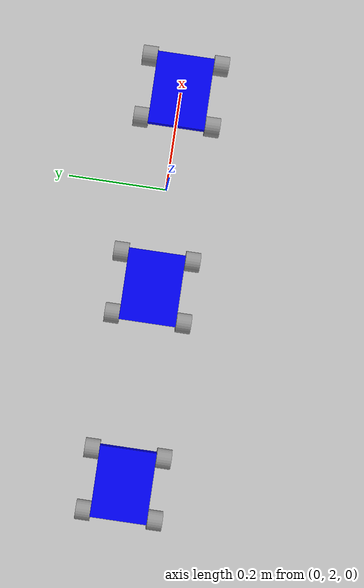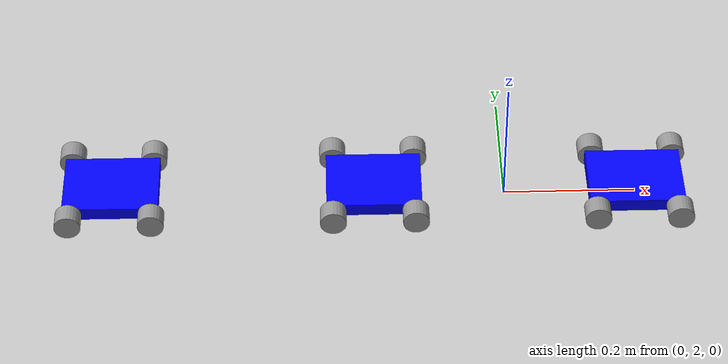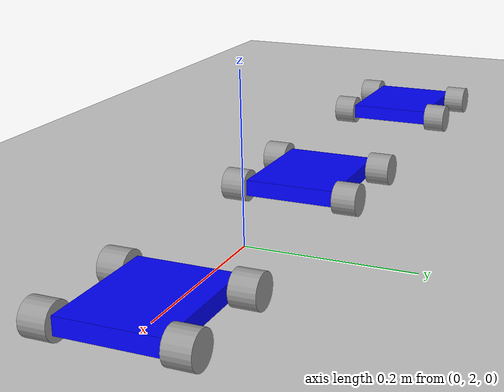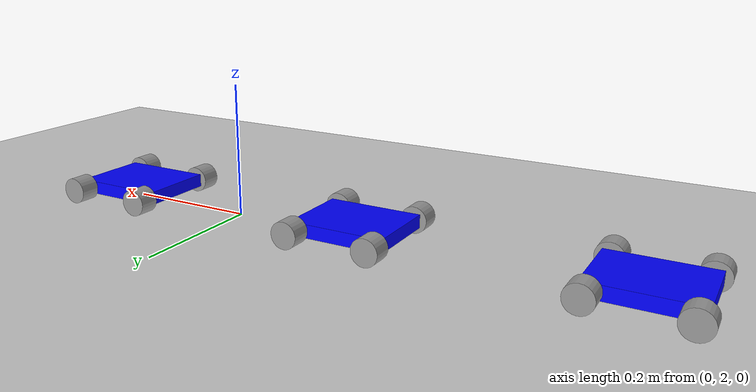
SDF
<sdf version="1.6">
 <world name="default">
  <model name="ground_plane">
   <static>1</static>
   <link name="link">
    <collision name="collision">
     <geometry><plane><normal>0 0 1</normal><size>100 100</size></plane></geometry>
     <surface><friction><ode><mu>100</mu><mu2>50</mu2></ode></friction></surface>
    </collision>
    <visual name="visual">
     <cast_shadows>0</cast_shadows>
     <geometry><plane><normal>0 0 1</normal><size>100 100</size></plane></geometry>
     <material>
      <script><uri>file://media/materials/scripts/gazebo.material</uri><name>Gazebo/Grey</name></script>
     </material>
    </visual>
   </link>
  </model>
  <model name="nanocrawler1">
   <link name="chassis">
    <inertial>
     <mass>1</mass>
     <inertia>
      <ixx>0.166667</ixx>
      <ixy>0</ixy>
      <ixz>0</ixz>
      <iyy>0.166667</iyy>
      <iyz>0</iyz>
      <izz>0.166667</izz>
     </inertia>
    </inertial>
    <visual name="visual">
     <geometry><box><size>0.145 0.115 0.02</size></box></geometry>
     <material>
      <lighting>1</lighting>
      <script><uri>file://media/materials/scripts/gazebo.material</uri><name>Gazebo/Grey</name></script>
      <shader type="pixel"><normal_map>__default__</normal_map></shader>
      <ambient>0 0 1 1</ambient>
      <diffuse>0.7 0.7 0.7 1</diffuse>
      <specular>0.01 0.01 0.01 1</specular>
      <emissive>0 0 0 1</emissive>
     </material>
    </visual>
    <collision name="collision">
     <geometry><box><size>0.145 0.115 0.02</size></box></geometry>
     <surface>
      <friction>
       <ode><mu>1</mu><mu2>1</mu2><fdir1>0 0 0</fdir1><slip1>0</slip1><slip2>0</slip2></ode>
       <torsional>
        <coefficient>1</coefficient>
        <patch_radius>0</patch_radius>
        <surface_radius>0</surface_radius>
        <use_patch_radius>1</use_patch_radius>
        <ode><slip>0</slip></ode>
       </torsional>
      </friction>
      <bounce><restitution_coefficient>0</restitution_coefficient><threshold>1e+06</threshold></bounce>
      <contact>
       <collide_without_contact>0</collide_without_contact>
       <collide_without_contact_bitmask>1</collide_without_contact_bitmask>
       <collide_bitmask>1</collide_bitmask>
       <ode>
        <soft_cfm>0</soft_cfm>
        <soft_erp>0.2</soft_erp>
        <kp>1e+13</kp>
        <kd>1</kd>
        <max_vel>0.01</max_vel>
        <min_depth>0</min_depth>
       </ode>
       <bullet>
        <split_impulse>1</split_impulse>
        <split_impulse_penetration_threshold>-0.01</split_impulse_penetration_threshold>
        <soft_cfm>0</soft_cfm>
        <soft_erp>0.2</soft_erp>
        <kp>1e+13</kp>
        <kd>1</kd>
       </bullet>
      </contact>
     </surface>
    </collision>
   </link>
   <link name="left_front_wheel">
    <pose>0.0625 0.0725 0 1.5708 -0 0</pose>
    <inertial>
     <mass>1</mass>
     <inertia><ixx>0.145833</ixx><ixy>0</ixy><ixz>0</ixz><iyy>0.145833</iyy><iyz>0</iyz><izz>0.125</izz></inertia>
    </inertial>
    <visual name="visual">
     <geometry><cylinder><radius>0.02</radius><length>0.03</length></cylinder></geometry>
     <material>
      <lighting>1</lighting>
      <script><uri>file://media/materials/scripts/gazebo.material</uri><name>Gazebo/Grey</name></script>
      <shader type="pixel"><normal_map>__default__</normal_map></shader>
      <ambient>0.1 0.1 0.1 1</ambient>
      <diffuse>0.7 0.7 0.7 1</diffuse>
      <specular>0.01 0.01 0.01 1</specular>
      <emissive>0 0 0 1</emissive>
     </material>
    </visual>
    <collision name="collision">
     <geometry><cylinder><radius>0.02</radius><length>0.03</length></cylinder></geometry>
     <surface>
      <friction>
       <ode><mu>1</mu><mu2>1</mu2><fdir1>0 0 0</fdir1><slip1>0</slip1><slip2>0</slip2></ode>
       <torsional>
        <coefficient>1</coefficient>
        <patch_radius>0</patch_radius>
        <surface_radius>0</surface_radius>
        <use_patch_radius>1</use_patch_radius>
        <ode><slip>0</slip></ode>
       </torsional>
      </friction>
      <bounce><restitution_coefficient>0</restitution_coefficient><threshold>1e+06</threshold></bounce>
      <contact>
       <collide_without_contact>0</collide_without_contact>
       <collide_without_contact_bitmask>1</collide_without_contact_bitmask>
       <collide_bitmask>1</collide_bitmask>
       <ode>
        <soft_cfm>0</soft_cfm>
        <soft_erp>0.2</soft_erp>
        <kp>1e+13</kp>
        <kd>1</kd>
        <max_vel>0.01</max_vel>
        <min_depth>0</min_depth>
       </ode>
       <bullet>
        <split_impulse>1</split_impulse>
        <split_impulse_penetration_threshold>-0.01</split_impulse_penetration_threshold>
        <soft_cfm>0</soft_cfm>
        <soft_erp>0.2</soft_erp>
        <kp>1e+13</kp>
        <kd>1</kd>
       </bullet>
      </contact>
     </surface>
    </collision>
   </link>
   <joint name="left_front_wheel_hinge" type="revolute">
    <child>left_front_wheel</child>
    <parent>chassis</parent>
    <axis>
     <xyz>0 0 1</xyz>
     <use_parent_model_frame>0</use_parent_model_frame>
     <limit><lower>-1e+16</lower><upper>1e+16</upper></limit>
     <dynamics><spring_reference>0</spring_reference><spring_stiffness>0</spring_stiffness></dynamics>
    </axis>
   </joint>
   <link name="right_front_wheel">
    <pose>0.0625 -0.0725 0 1.5708 -0 0</pose>
    <inertial>
     <mass>1</mass>
     <inertia><ixx>0.145833</ixx><ixy>0</ixy><ixz>0</ixz><iyy>0.145833</iyy><iyz>0</iyz><izz>0.125</izz></inertia>
    </inertial>
    <visual name="visual">
     <geometry><cylinder><radius>0.02</radius><length>0.03</length></cylinder></geometry>
     <material>
      <lighting>1</lighting>
      <script><uri>file://media/materials/scripts/gazebo.material</uri><name>Gazebo/Grey</name></script>
      <shader type="pixel"><normal_map>__default__</normal_map></shader>
      <ambient>0.1 0.1 0.1 1</ambient>
      <diffuse>0.7 0.7 0.7 1</diffuse>
      <specular>0.01 0.01 0.01 1</specular>
      <emissive>0 0 0 1</emissive>
     </material>
    </visual>
    <collision name="collision">
     <geometry><cylinder><radius>0.02</radius><length>0.03</length></cylinder></geometry>
     <surface>
      <friction>
       <ode><mu>1</mu><mu2>1</mu2><fdir1>0 0 0</fdir1><slip1>0</slip1><slip2>0</slip2></ode>
       <torsional>
        <coefficient>1</coefficient>
        <patch_radius>0</patch_radius>
        <surface_radius>0</surface_radius>
        <use_patch_radius>1</use_patch_radius>
        <ode><slip>0</slip></ode>
       </torsional>
      </friction>
      <bounce><restitution_coefficient>0</restitution_coefficient><threshold>1e+06</threshold></bounce>
      <contact>
       <collide_without_contact>0</collide_without_contact>
       <collide_without_contact_bitmask>1</collide_without_contact_bitmask>
       <collide_bitmask>1</collide_bitmask>
       <ode>
        <soft_cfm>0</soft_cfm>
        <soft_erp>0.2</soft_erp>
        <kp>1e+13</kp>
        <kd>1</kd>
        <max_vel>0.01</max_vel>
        <min_depth>0</min_depth>
       </ode>
       <bullet>
        <split_impulse>1</split_impulse>
        <split_impulse_penetration_threshold>-0.01</split_impulse_penetration_threshold>
        <soft_cfm>0</soft_cfm>
        <soft_erp>0.2</soft_erp>
        <kp>1e+13</kp>
        <kd>1</kd>
       </bullet>
      </contact>
     </surface>
    </collision>
   </link>
   <joint name="right_front_wheel_hinge" type="revolute">
    <child>right_front_wheel</child>
    <parent>chassis</parent>
    <axis>
     <xyz>0 0 1</xyz>
     <use_parent_model_frame>0</use_parent_model_frame>
     <limit><lower>-1e+16</lower><upper>1e+16</upper></limit>
     <dynamics><spring_reference>0</spring_reference><spring_stiffness>0</spring_stiffness></dynamics>
    </axis>
   </joint>
   <link name="left_rear_wheel">
    <pose>-0.0625 0.0725 0 1.5708 -0 0</pose>
    <inertial>
     <mass>1</mass>
     <inertia><ixx>0.145833</ixx><ixy>0</ixy><ixz>0</ixz><iyy>0.145833</iyy><iyz>0</iyz><izz>0.125</izz></inertia>
    </inertial>
    <visual name="visual">
     <geometry><cylinder><radius>0.02</radius><length>0.03</length></cylinder></geometry>
     <material>
      <lighting>1</lighting>
      <script><uri>file://media/materials/scripts/gazebo.material</uri><name>Gazebo/Grey</name></script>
      <shader type="pixel"><normal_map>__default__</normal_map></shader>
      <ambient>0.1 0.1 0.1 1</ambient>
      <diffuse>0.7 0.7 0.7 1</diffuse>
      <specular>0.01 0.01 0.01 1</specular>
      <emissive>0 0 0 1</emissive>
     </material>
    </visual>
    <collision name="collision">
     <geometry><cylinder><radius>0.02</radius><length>0.03</length></cylinder></geometry>
     <surface>
      <friction>
       <ode><mu>1</mu><mu2>1</mu2><fdir1>0 0 0</fdir1><slip1>0</slip1><slip2>0</slip2></ode>
       <torsional>
        <coefficient>1</coefficient>
        <patch_radius>0</patch_radius>
        <surface_radius>0</surface_radius>
        <use_patch_radius>1</use_patch_radius>
        <ode><slip>0</slip></ode>
       </torsional>
      </friction>
      <bounce><restitution_coefficient>0</restitution_coefficient><threshold>1e+06</threshold></bounce>
      <contact>
       <collide_without_contact>0</collide_without_contact>
       <collide_without_contact_bitmask>1</collide_without_contact_bitmask>
       <collide_bitmask>1</collide_bitmask>
       <ode>
        <soft_cfm>0</soft_cfm>
        <soft_erp>0.2</soft_erp>
        <kp>1e+13</kp>
        <kd>1</kd>
        <max_vel>0.01</max_vel>
        <min_depth>0</min_depth>
       </ode>
       <bullet>
        <split_impulse>1</split_impulse>
        <split_impulse_penetration_threshold>-0.01</split_impulse_penetration_threshold>
        <soft_cfm>0</soft_cfm>
        <soft_erp>0.2</soft_erp>
        <kp>1e+13</kp>
        <kd>1</kd>
       </bullet>
      </contact>
     </surface>
    </collision>
   </link>
   <joint name="left_rear_wheel_hinge" type="revolute">
    <child>left_rear_wheel</child>
    <parent>chassis</parent>
    <axis>
     <xyz>0 0 1</xyz>
     <use_parent_model_frame>0</use_parent_model_frame>
     <limit><lower>-1e+16</lower><upper>1e+16</upper></limit>
     <dynamics><spring_reference>0</spring_reference><spring_stiffness>0</spring_stiffness></dynamics>
    </axis>
   </joint>
   <link name="right_rear_wheel">
    <pose>-0.0625 -0.0725 0 1.5708 -0 0</pose>
    <inertial>
     <mass>1</mass>
     <inertia><ixx>0.145833</ixx><ixy>0</ixy><ixz>0</ixz><iyy>0.145833</iyy><iyz>0</iyz><izz>0.125</izz></inertia>
    </inertial>
    <visual name="visual">
     <geometry><cylinder><radius>0.02</radius><length>0.03</length></cylinder></geometry>
     <material>
      <lighting>1</lighting>
      <script><uri>file://media/materials/scripts/gazebo.material</uri><name>Gazebo/Grey</name></script>
      <shader type="pixel"><normal_map>__default__</normal_map></shader>
      <ambient>0.1 0.1 0.1 1</ambient>
      <diffuse>0.7 0.7 0.7 1</diffuse>
      <specular>0.01 0.01 0.01 1</specular>
      <emissive>0 0 0 1</emissive>
     </material>
    </visual>
    <collision name="collision">
     <geometry><cylinder><radius>0.02</radius><length>0.03</length></cylinder></geometry>
     <surface>
      <friction>
       <ode><mu>1</mu><mu2>1</mu2><fdir1>0 0 0</fdir1><slip1>0</slip1><slip2>0</slip2></ode>
       <torsional>
        <coefficient>1</coefficient>
        <patch_radius>0</patch_radius>
        <surface_radius>0</surface_radius>
        <use_patch_radius>1</use_patch_radius>
        <ode><slip>0</slip></ode>
       </torsional>
      </friction>
      <bounce><restitution_coefficient>0</restitution_coefficient><threshold>1e+06</threshold></bounce>
      <contact>
       <collide_without_contact>0</collide_without_contact>
       <collide_without_contact_bitmask>1</collide_without_contact_bitmask>
       <collide_bitmask>1</collide_bitmask>
       <ode>
        <soft_cfm>0</soft_cfm>
        <soft_erp>0.2</soft_erp>
        <kp>1e+13</kp>
        <kd>1</kd>
        <max_vel>0.01</max_vel>
        <min_depth>0</min_depth>
       </ode>
       <bullet>
        <split_impulse>1</split_impulse>
        <split_impulse_penetration_threshold>-0.01</split_impulse_penetration_threshold>
        <soft_cfm>0</soft_cfm>
        <soft_erp>0.2</soft_erp>
        <kp>1e+13</kp>
        <kd>1</kd>
       </bullet>
      </contact>
     </surface>
    </collision>
   </link>
   <joint name="right_rear_wheel_hinge" type="revolute">
    <child>right_rear_wheel</child>
    <parent>chassis</parent>
    <axis>
     <xyz>0 0 1</xyz>
     <use_parent_model_frame>0</use_parent_model_frame>
     <limit><lower>-1e+16</lower><upper>1e+16</upper></limit>
     <dynamics><spring_reference>0</spring_reference><spring_stiffness>0</spring_stiffness></dynamics>
    </axis>
   </joint>
   <static>0</static>
   <pose>-0.600256 2.0001 0.02 -1e-06 2e-06 -0.000482</pose>
  </model>
  <model name="nanocrawler2">
   <link name="chassis">
    <inertial>
     <mass>1</mass>
     <inertia>
      <ixx>0.166667</ixx>
      <ixy>0</ixy>
      <ixz>0</ixz>
      <iyy>0.166667</iyy>
      <iyz>0</iyz>
      <izz>0.166667</izz>
     </inertia>
    </inertial>
    <visual name="visual">
     <geometry><box><size>0.145 0.115 0.02</size></box></geometry>
     <material>
      <lighting>1</lighting>
      <script><uri>file://media/materials/scripts/gazebo.material</uri><name>Gazebo/Grey</name></script>
      <shader type="pixel"><normal_map>__default__</normal_map></shader>
      <ambient>0 0 1 1</ambient>
      <diffuse>0.7 0.7 0.7 1</diffuse>
      <specular>0.01 0.01 0.01 1</specular>
      <emissive>0 0 0 1</emissive>
     </material>
    </visual>
    <collision name="collision">
     <geometry><box><size>0.145 0.115 0.02</size></box></geometry>
     <surface>
      <friction>
       <ode><mu>1</mu><mu2>1</mu2><fdir1>0 0 0</fdir1><slip1>0</slip1><slip2>0</slip2></ode>
       <torsional>
        <coefficient>1</coefficient>
        <patch_radius>0</patch_radius>
        <surface_radius>0</surface_radius>
        <use_patch_radius>1</use_patch_radius>
        <ode><slip>0</slip></ode>
       </torsional>
      </friction>
      <bounce><restitution_coefficient>0</restitution_coefficient><threshold>1e+06</threshold></bounce>
      <contact>
       <collide_without_contact>0</collide_without_contact>
       <collide_without_contact_bitmask>1</collide_without_contact_bitmask>
       <collide_bitmask>1</collide_bitmask>
       <ode>
        <soft_cfm>0</soft_cfm>
        <soft_erp>0.2</soft_erp>
        <kp>1e+13</kp>
        <kd>1</kd>
        <max_vel>0.01</max_vel>
        <min_depth>0</min_depth>
       </ode>
       <bullet>
        <split_impulse>1</split_impulse>
        <split_impulse_penetration_threshold>-0.01</split_impulse_penetration_threshold>
        <soft_cfm>0</soft_cfm>
        <soft_erp>0.2</soft_erp>
        <kp>1e+13</kp>
        <kd>1</kd>
       </bullet>
      </contact>
     </surface>
    </collision>
   </link>
   <link name="left_front_wheel">
    <pose>0.0625 0.0725 0 1.5708 -0 0</pose>
    <inertial>
     <mass>1</mass>
     <inertia><ixx>0.145833</ixx><ixy>0</ixy><ixz>0</ixz><iyy>0.145833</iyy><iyz>0</iyz><izz>0.125</izz></inertia>
    </inertial>
    <visual name="visual">
     <geometry><cylinder><radius>0.02</radius><length>0.03</length></cylinder></geometry>
     <material>
      <lighting>1</lighting>
      <script><uri>file://media/materials/scripts/gazebo.material</uri><name>Gazebo/Grey</name></script>
      <shader type="pixel"><normal_map>__default__</normal_map></shader>
      <ambient>0.1 0.1 0.1 1</ambient>
      <diffuse>0.7 0.7 0.7 1</diffuse>
      <specular>0.01 0.01 0.01 1</specular>
      <emissive>0 0 0 1</emissive>
     </material>
    </visual>
    <collision name="collision">
     <geometry><cylinder><radius>0.02</radius><length>0.03</length></cylinder></geometry>
     <surface>
      <friction>
       <ode><mu>1</mu><mu2>1</mu2><fdir1>0 0 0</fdir1><slip1>0</slip1><slip2>0</slip2></ode>
       <torsional>
        <coefficient>1</coefficient>
        <patch_radius>0</patch_radius>
        <surface_radius>0</surface_radius>
        <use_patch_radius>1</use_patch_radius>
        <ode><slip>0</slip></ode>
       </torsional>
      </friction>
      <bounce><restitution_coefficient>0</restitution_coefficient><threshold>1e+06</threshold></bounce>
      <contact>
       <collide_without_contact>0</collide_without_contact>
       <collide_without_contact_bitmask>1</collide_without_contact_bitmask>
       <collide_bitmask>1</collide_bitmask>
       <ode>
        <soft_cfm>0</soft_cfm>
        <soft_erp>0.2</soft_erp>
        <kp>1e+13</kp>
        <kd>1</kd>
        <max_vel>0.01</max_vel>
        <min_depth>0</min_depth>
       </ode>
       <bullet>
        <split_impulse>1</split_impulse>
        <split_impulse_penetration_threshold>-0.01</split_impulse_penetration_threshold>
        <soft_cfm>0</soft_cfm>
        <soft_erp>0.2</soft_erp>
        <kp>1e+13</kp>
        <kd>1</kd>
       </bullet>
      </contact>
     </surface>
    </collision>
   </link>
   <joint name="left_front_wheel_hinge" type="revolute">
    <child>left_front_wheel</child>
    <parent>chassis</parent>
    <axis>
     <xyz>0 0 1</xyz>
     <use_parent_model_frame>0</use_parent_model_frame>
     <limit><lower>-1e+16</lower><upper>1e+16</upper></limit>
     <dynamics><spring_reference>0</spring_reference><spring_stiffness>0</spring_stiffness></dynamics>
    </axis>
   </joint>
   <link name="right_front_wheel">
    <pose>0.0625 -0.0725 0 1.5708 -0 0</pose>
    <inertial>
     <mass>1</mass>
     <inertia><ixx>0.145833</ixx><ixy>0</ixy><ixz>0</ixz><iyy>0.145833</iyy><iyz>0</iyz><izz>0.125</izz></inertia>
    </inertial>
    <visual name="visual">
     <geometry><cylinder><radius>0.02</radius><length>0.03</length></cylinder></geometry>
     <material>
      <lighting>1</lighting>
      <script><uri>file://media/materials/scripts/gazebo.material</uri><name>Gazebo/Grey</name></script>
      <shader type="pixel"><normal_map>__default__</normal_map></shader>
      <ambient>0.1 0.1 0.1 1</ambient>
      <diffuse>0.7 0.7 0.7 1</diffuse>
      <specular>0.01 0.01 0.01 1</specular>
      <emissive>0 0 0 1</emissive>
     </material>
    </visual>
    <collision name="collision">
     <geometry><cylinder><radius>0.02</radius><length>0.03</length></cylinder></geometry>
     <surface>
      <friction>
       <ode><mu>1</mu><mu2>1</mu2><fdir1>0 0 0</fdir1><slip1>0</slip1><slip2>0</slip2></ode>
       <torsional>
        <coefficient>1</coefficient>
        <patch_radius>0</patch_radius>
        <surface_radius>0</surface_radius>
        <use_patch_radius>1</use_patch_radius>
        <ode><slip>0</slip></ode>
       </torsional>
      </friction>
      <bounce><restitution_coefficient>0</restitution_coefficient><threshold>1e+06</threshold></bounce>
      <contact>
       <collide_without_contact>0</collide_without_contact>
       <collide_without_contact_bitmask>1</collide_without_contact_bitmask>
       <collide_bitmask>1</collide_bitmask>
       <ode>
        <soft_cfm>0</soft_cfm>
        <soft_erp>0.2</soft_erp>
        <kp>1e+13</kp>
        <kd>1</kd>
        <max_vel>0.01</max_vel>
        <min_depth>0</min_depth>
       </ode>
       <bullet>
        <split_impulse>1</split_impulse>
        <split_impulse_penetration_threshold>-0.01</split_impulse_penetration_threshold>
        <soft_cfm>0</soft_cfm>
        <soft_erp>0.2</soft_erp>
        <kp>1e+13</kp>
        <kd>1</kd>
       </bullet>
      </contact>
     </surface>
    </collision>
   </link>
   <joint name="right_front_wheel_hinge" type="revolute">
    <child>right_front_wheel</child>
    <parent>chassis</parent>
    <axis>
     <xyz>0 0 1</xyz>
     <use_parent_model_frame>0</use_parent_model_frame>
     <limit><lower>-1e+16</lower><upper>1e+16</upper></limit>
     <dynamics><spring_reference>0</spring_reference><spring_stiffness>0</spring_stiffness></dynamics>
    </axis>
   </joint>
   <link name="left_rear_wheel">
    <pose>-0.0625 0.0725 0 1.5708 -0 0</pose>
    <inertial>
     <mass>1</mass>
     <inertia><ixx>0.145833</ixx><ixy>0</ixy><ixz>0</ixz><iyy>0.145833</iyy><iyz>0</iyz><izz>0.125</izz></inertia>
    </inertial>
    <visual name="visual">
     <geometry><cylinder><radius>0.02</radius><length>0.03</length></cylinder></geometry>
     <material>
      <lighting>1</lighting>
      <script><uri>file://media/materials/scripts/gazebo.material</uri><name>Gazebo/Grey</name></script>
      <shader type="pixel"><normal_map>__default__</normal_map></shader>
      <ambient>0.1 0.1 0.1 1</ambient>
      <diffuse>0.7 0.7 0.7 1</diffuse>
      <specular>0.01 0.01 0.01 1</specular>
      <emissive>0 0 0 1</emissive>
     </material>
    </visual>
    <collision name="collision">
     <geometry><cylinder><radius>0.02</radius><length>0.03</length></cylinder></geometry>
     <surface>
      <friction>
       <ode><mu>1</mu><mu2>1</mu2><fdir1>0 0 0</fdir1><slip1>0</slip1><slip2>0</slip2></ode>
       <torsional>
        <coefficient>1</coefficient>
        <patch_radius>0</patch_radius>
        <surface_radius>0</surface_radius>
        <use_patch_radius>1</use_patch_radius>
        <ode><slip>0</slip></ode>
       </torsional>
      </friction>
      <bounce><restitution_coefficient>0</restitution_coefficient><threshold>1e+06</threshold></bounce>
      <contact>
       <collide_without_contact>0</collide_without_contact>
       <collide_without_contact_bitmask>1</collide_without_contact_bitmask>
       <collide_bitmask>1</collide_bitmask>
       <ode>
        <soft_cfm>0</soft_cfm>
        <soft_erp>0.2</soft_erp>
        <kp>1e+13</kp>
        <kd>1</kd>
        <max_vel>0.01</max_vel>
        <min_depth>0</min_depth>
       </ode>
       <bullet>
        <split_impulse>1</split_impulse>
        <split_impulse_penetration_threshold>-0.01</split_impulse_penetration_threshold>
        <soft_cfm>0</soft_cfm>
        <soft_erp>0.2</soft_erp>
        <kp>1e+13</kp>
        <kd>1</kd>
       </bullet>
      </contact>
     </surface>
    </collision>
   </link>
   <joint name="left_rear_wheel_hinge" type="revolute">
    <child>left_rear_wheel</child>
    <parent>chassis</parent>
    <axis>
     <xyz>0 0 1</xyz>
     <use_parent_model_frame>0</use_parent_model_frame>
     <limit><lower>-1e+16</lower><upper>1e+16</upper></limit>
     <dynamics><spring_reference>0</spring_reference><spring_stiffness>0</spring_stiffness></dynamics>
    </axis>
   </joint>
   <link name="right_rear_wheel">
    <pose>-0.0625 -0.0725 0 1.5708 -0 0</pose>
    <inertial>
     <mass>1</mass>
     <inertia><ixx>0.145833</ixx><ixy>0</ixy><ixz>0</ixz><iyy>0.145833</iyy><iyz>0</iyz><izz>0.125</izz></inertia>
    </inertial>
    <visual name="visual">
     <geometry><cylinder><radius>0.02</radius><length>0.03</length></cylinder></geometry>
     <material>
      <lighting>1</lighting>
      <script><uri>file://media/materials/scripts/gazebo.material</uri><name>Gazebo/Grey</name></script>
      <shader type="pixel"><normal_map>__default__</normal_map></shader>
      <ambient>0.1 0.1 0.1 1</ambient>
      <diffuse>0.7 0.7 0.7 1</diffuse>
      <specular>0.01 0.01 0.01 1</specular>
      <emissive>0 0 0 1</emissive>
     </material>
    </visual>
    <collision name="collision">
     <geometry><cylinder><radius>0.02</radius><length>0.03</length></cylinder></geometry>
     <surface>
      <friction>
       <ode><mu>1</mu><mu2>1</mu2><fdir1>0 0 0</fdir1><slip1>0</slip1><slip2>0</slip2></ode>
       <torsional>
        <coefficient>1</coefficient>
        <patch_radius>0</patch_radius>
        <surface_radius>0</surface_radius>
        <use_patch_radius>1</use_patch_radius>
        <ode><slip>0</slip></ode>
       </torsional>
      </friction>
      <bounce><restitution_coefficient>0</restitution_coefficient><threshold>1e+06</threshold></bounce>
      <contact>
       <collide_without_contact>0</collide_without_contact>
       <collide_without_contact_bitmask>1</collide_without_contact_bitmask>
       <collide_bitmask>1</collide_bitmask>
       <ode>
        <soft_cfm>0</soft_cfm>
        <soft_erp>0.2</soft_erp>
        <kp>1e+13</kp>
        <kd>1</kd>
        <max_vel>0.01</max_vel>
        <min_depth>0</min_depth>
       </ode>
       <bullet>
        <split_impulse>1</split_impulse>
        <split_impulse_penetration_threshold>-0.01</split_impulse_penetration_threshold>
        <soft_cfm>0</soft_cfm>
        <soft_erp>0.2</soft_erp>
        <kp>1e+13</kp>
        <kd>1</kd>
       </bullet>
      </contact>
     </surface>
    </collision>
   </link>
   <joint name="right_rear_wheel_hinge" type="revolute">
    <child>right_rear_wheel</child>
    <parent>chassis</parent>
    <axis>
     <xyz>0 0 1</xyz>
     <use_parent_model_frame>0</use_parent_model_frame>
     <limit><lower>-1e+16</lower><upper>1e+16</upper></limit>
     <dynamics><spring_reference>0</spring_reference><spring_stiffness>0</spring_stiffness></dynamics>
    </axis>
   </joint>
   <static>0</static>
   <pose>-0.200256 2.0001 0.02 -1e-06 2e-06 -0.000482</pose>
  </model>
  <model name="nanocrawler3">
   <link name="chassis">
    <inertial>
     <mass>1</mass>
     <inertia>
      <ixx>0.166667</ixx>
      <ixy>0</ixy>
      <ixz>0</ixz>
      <iyy>0.166667</iyy>
      <iyz>0</iyz>
      <izz>0.166667</izz>
     </inertia>
    </inertial>
    <visual name="visual">
     <geometry><box><size>0.145 0.115 0.02</size></box></geometry>
     <material>
      <lighting>1</lighting>
      <script><uri>file://media/materials/scripts/gazebo.material</uri><name>Gazebo/Grey</name></script>
      <shader type="pixel"><normal_map>__default__</normal_map></shader>
      <ambient>0 0 1 1</ambient>
      <diffuse>0.7 0.7 0.7 1</diffuse>
      <specular>0.01 0.01 0.01 1</specular>
      <emissive>0 0 0 1</emissive>
     </material>
    </visual>
    <collision name="collision">
     <geometry><box><size>0.145 0.115 0.02</size></box></geometry>
     <surface>
      <friction>
       <ode><mu>1</mu><mu2>1</mu2><fdir1>0 0 0</fdir1><slip1>0</slip1><slip2>0</slip2></ode>
       <torsional>
        <coefficient>1</coefficient>
        <patch_radius>0</patch_radius>
        <surface_radius>0</surface_radius>
        <use_patch_radius>1</use_patch_radius>
        <ode><slip>0</slip></ode>
       </torsional>
      </friction>
      <bounce><restitution_coefficient>0</restitution_coefficient><threshold>1e+06</threshold></bounce>
      <contact>
       <collide_without_contact>0</collide_without_contact>
       <collide_without_contact_bitmask>1</collide_without_contact_bitmask>
       <collide_bitmask>1</collide_bitmask>
       <ode>
        <soft_cfm>0</soft_cfm>
        <soft_erp>0.2</soft_erp>
        <kp>1e+13</kp>
        <kd>1</kd>
        <max_vel>0.01</max_vel>
        <min_depth>0</min_depth>
       </ode>
       <bullet>
        <split_impulse>1</split_impulse>
        <split_impulse_penetration_threshold>-0.01</split_impulse_penetration_threshold>
        <soft_cfm>0</soft_cfm>
        <soft_erp>0.2</soft_erp>
        <kp>1e+13</kp>
        <kd>1</kd>
       </bullet>
      </contact>
     </surface>
    </collision>
   </link>
   <link name="left_front_wheel">
    <pose>0.0625 0.0725 0 1.5708 -0 0</pose>
    <inertial>
     <mass>1</mass>
     <inertia><ixx>0.145833</ixx><ixy>0</ixy><ixz>0</ixz><iyy>0.145833</iyy><iyz>0</iyz><izz>0.125</izz></inertia>
    </inertial>
    <visual name="visual">
     <geometry><cylinder><radius>0.02</radius><length>0.03</length></cylinder></geometry>
     <material>
      <lighting>1</lighting>
      <script><uri>file://media/materials/scripts/gazebo.material</uri><name>Gazebo/Grey</name></script>
      <shader type="pixel"><normal_map>__default__</normal_map></shader>
      <ambient>0.1 0.1 0.1 1</ambient>
      <diffuse>0.7 0.7 0.7 1</diffuse>
      <specular>0.01 0.01 0.01 1</specular>
      <emissive>0 0 0 1</emissive>
     </material>
    </visual>
    <collision name="collision">
     <geometry><cylinder><radius>0.02</radius><length>0.03</length></cylinder></geometry>
     <surface>
      <friction>
       <ode><mu>1</mu><mu2>1</mu2><fdir1>0 0 0</fdir1><slip1>0</slip1><slip2>0</slip2></ode>
       <torsional>
        <coefficient>1</coefficient>
        <patch_radius>0</patch_radius>
        <surface_radius>0</surface_radius>
        <use_patch_radius>1</use_patch_radius>
        <ode><slip>0</slip></ode>
       </torsional>
      </friction>
      <bounce><restitution_coefficient>0</restitution_coefficient><threshold>1e+06</threshold></bounce>
      <contact>
       <collide_without_contact>0</collide_without_contact>
       <collide_without_contact_bitmask>1</collide_without_contact_bitmask>
       <collide_bitmask>1</collide_bitmask>
       <ode>
        <soft_cfm>0</soft_cfm>
        <soft_erp>0.2</soft_erp>
        <kp>1e+13</kp>
        <kd>1</kd>
        <max_vel>0.01</max_vel>
        <min_depth>0</min_depth>
       </ode>
       <bullet>
        <split_impulse>1</split_impulse>
        <split_impulse_penetration_threshold>-0.01</split_impulse_penetration_threshold>
        <soft_cfm>0</soft_cfm>
        <soft_erp>0.2</soft_erp>
        <kp>1e+13</kp>
        <kd>1</kd>
       </bullet>
      </contact>
     </surface>
    </collision>
   </link>
   <joint name="left_front_wheel_hinge" type="revolute">
    <child>left_front_wheel</child>
    <parent>chassis</parent>
    <axis>
     <xyz>0 0 1</xyz>
     <use_parent_model_frame>0</use_parent_model_frame>
     <limit><lower>-1e+16</lower><upper>1e+16</upper></limit>
     <dynamics><spring_reference>0</spring_reference><spring_stiffness>0</spring_stiffness></dynamics>
    </axis>
   </joint>
   <link name="right_front_wheel">
    <pose>0.0625 -0.0725 0 1.5708 -0 0</pose>
    <inertial>
     <mass>1</mass>
     <inertia><ixx>0.145833</ixx><ixy>0</ixy><ixz>0</ixz><iyy>0.145833</iyy><iyz>0</iyz><izz>0.125</izz></inertia>
    </inertial>
    <visual name="visual">
     <geometry><cylinder><radius>0.02</radius><length>0.03</length></cylinder></geometry>
     <material>
      <lighting>1</lighting>
      <script><uri>file://media/materials/scripts/gazebo.material</uri><name>Gazebo/Grey</name></script>
      <shader type="pixel"><normal_map>__default__</normal_map></shader>
      <ambient>0.1 0.1 0.1 1</ambient>
      <diffuse>0.7 0.7 0.7 1</diffuse>
      <specular>0.01 0.01 0.01 1</specular>
      <emissive>0 0 0 1</emissive>
     </material>
    </visual>
    <collision name="collision">
     <geometry><cylinder><radius>0.02</radius><length>0.03</length></cylinder></geometry>
     <surface>
      <friction>
       <ode><mu>1</mu><mu2>1</mu2><fdir1>0 0 0</fdir1><slip1>0</slip1><slip2>0</slip2></ode>
       <torsional>
        <coefficient>1</coefficient>
        <patch_radius>0</patch_radius>
        <surface_radius>0</surface_radius>
        <use_patch_radius>1</use_patch_radius>
        <ode><slip>0</slip></ode>
       </torsional>
      </friction>
      <bounce><restitution_coefficient>0</restitution_coefficient><threshold>1e+06</threshold></bounce>
      <contact>
       <collide_without_contact>0</collide_without_contact>
       <collide_without_contact_bitmask>1</collide_without_contact_bitmask>
       <collide_bitmask>1</collide_bitmask>
       <ode>
        <soft_cfm>0</soft_cfm>
        <soft_erp>0.2</soft_erp>
        <kp>1e+13</kp>
        <kd>1</kd>
        <max_vel>0.01</max_vel>
        <min_depth>0</min_depth>
       </ode>
       <bullet>
        <split_impulse>1</split_impulse>
        <split_impulse_penetration_threshold>-0.01</split_impulse_penetration_threshold>
        <soft_cfm>0</soft_cfm>
        <soft_erp>0.2</soft_erp>
        <kp>1e+13</kp>
        <kd>1</kd>
       </bullet>
      </contact>
     </surface>
    </collision>
   </link>
   <joint name="right_front_wheel_hinge" type="revolute">
    <child>right_front_wheel</child>
    <parent>chassis</parent>
    <axis>
     <xyz>0 0 1</xyz>
     <use_parent_model_frame>0</use_parent_model_frame>
     <limit><lower>-1e+16</lower><upper>1e+16</upper></limit>
     <dynamics><spring_reference>0</spring_reference><spring_stiffness>0</spring_stiffness></dynamics>
    </axis>
   </joint>
   <link name="left_rear_wheel">
    <pose>-0.0625 0.0725 0 1.5708 -0 0</pose>
    <inertial>
     <mass>1</mass>
     <inertia><ixx>0.145833</ixx><ixy>0</ixy><ixz>0</ixz><iyy>0.145833</iyy><iyz>0</iyz><izz>0.125</izz></inertia>
    </inertial>
    <visual name="visual">
     <geometry><cylinder><radius>0.02</radius><length>0.03</length></cylinder></geometry>
     <material>
      <lighting>1</lighting>
      <script><uri>file://media/materials/scripts/gazebo.material</uri><name>Gazebo/Grey</name></script>
      <shader type="pixel"><normal_map>__default__</normal_map></shader>
      <ambient>0.1 0.1 0.1 1</ambient>
      <diffuse>0.7 0.7 0.7 1</diffuse>
      <specular>0.01 0.01 0.01 1</specular>
      <emissive>0 0 0 1</emissive>
     </material>
    </visual>
    <collision name="collision">
     <geometry><cylinder><radius>0.02</radius><length>0.03</length></cylinder></geometry>
     <surface>
      <friction>
       <ode><mu>1</mu><mu2>1</mu2><fdir1>0 0 0</fdir1><slip1>0</slip1><slip2>0</slip2></ode>
       <torsional>
        <coefficient>1</coefficient>
        <patch_radius>0</patch_radius>
        <surface_radius>0</surface_radius>
        <use_patch_radius>1</use_patch_radius>
        <ode><slip>0</slip></ode>
       </torsional>
      </friction>
      <bounce><restitution_coefficient>0</restitution_coefficient><threshold>1e+06</threshold></bounce>
      <contact>
       <collide_without_contact>0</collide_without_contact>
       <collide_without_contact_bitmask>1</collide_without_contact_bitmask>
       <collide_bitmask>1</collide_bitmask>
       <ode>
        <soft_cfm>0</soft_cfm>
        <soft_erp>0.2</soft_erp>
        <kp>1e+13</kp>
        <kd>1</kd>
        <max_vel>0.01</max_vel>
        <min_depth>0</min_depth>
       </ode>
       <bullet>
        <split_impulse>1</split_impulse>
        <split_impulse_penetration_threshold>-0.01</split_impulse_penetration_threshold>
        <soft_cfm>0</soft_cfm>
        <soft_erp>0.2</soft_erp>
        <kp>1e+13</kp>
        <kd>1</kd>
       </bullet>
      </contact>
     </surface>
    </collision>
   </link>
   <joint name="left_rear_wheel_hinge" type="revolute">
    <child>left_rear_wheel</child>
    <parent>chassis</parent>
    <axis>
     <xyz>0 0 1</xyz>
     <use_parent_model_frame>0</use_parent_model_frame>
     <limit><lower>-1e+16</lower><upper>1e+16</upper></limit>
     <dynamics><spring_reference>0</spring_reference><spring_stiffness>0</spring_stiffness></dynamics>
    </axis>
   </joint>
   <link name="right_rear_wheel">
    <pose>-0.0625 -0.0725 0 1.5708 -0 0</pose>
    <inertial>
     <mass>1</mass>
     <inertia><ixx>0.145833</ixx><ixy>0</ixy><ixz>0</ixz><iyy>0.145833</iyy><iyz>0</iyz><izz>0.125</izz></inertia>
    </inertial>
    <visual name="visual">
     <geometry><cylinder><radius>0.02</radius><length>0.03</length></cylinder></geometry>
     <material>
      <lighting>1</lighting>
      <script><uri>file://media/materials/scripts/gazebo.material</uri><name>Gazebo/Grey</name></script>
      <shader type="pixel"><normal_map>__default__</normal_map></shader>
      <ambient>0.1 0.1 0.1 1</ambient>
      <diffuse>0.7 0.7 0.7 1</diffuse>
      <specular>0.01 0.01 0.01 1</specular>
      <emissive>0 0 0 1</emissive>
     </material>
    </visual>
    <collision name="collision">
     <geometry><cylinder><radius>0.02</radius><length>0.03</length></cylinder></geometry>
     <surface>
      <friction>
       <ode><mu>1</mu><mu2>1</mu2><fdir1>0 0 0</fdir1><slip1>0</slip1><slip2>0</slip2></ode>
       <torsional>
        <coefficient>1</coefficient>
        <patch_radius>0</patch_radius>
        <surface_radius>0</surface_radius>
        <use_patch_radius>1</use_patch_radius>
        <ode><slip>0</slip></ode>
       </torsional>
      </friction>
      <bounce><restitution_coefficient>0</restitution_coefficient><threshold>1e+06</threshold></bounce>
      <contact>
       <collide_without_contact>0</collide_without_contact>
       <collide_without_contact_bitmask>1</collide_without_contact_bitmask>
       <collide_bitmask>1</collide_bitmask>
       <ode>
        <soft_cfm>0</soft_cfm>
        <soft_erp>0.2</soft_erp>
        <kp>1e+13</kp>
        <kd>1</kd>
        <max_vel>0.01</max_vel>
        <min_depth>0</min_depth>
       </ode>
       <bullet>
        <split_impulse>1</split_impulse>
        <split_impulse_penetration_threshold>-0.01</split_impulse_penetration_threshold>
        <soft_cfm>0</soft_cfm>
        <soft_erp>0.2</soft_erp>
        <kp>1e+13</kp>
        <kd>1</kd>
       </bullet>
      </contact>
     </surface>
    </collision>
   </link>
   <joint name="right_rear_wheel_hinge" type="revolute">
    <child>right_rear_wheel</child>
    <parent>chassis</parent>
    <axis>
     <xyz>0 0 1</xyz>
     <use_parent_model_frame>0</use_parent_model_frame>
     <limit><lower>-1e+16</lower><upper>1e+16</upper></limit>
     <dynamics><spring_reference>0</spring_reference><spring_stiffness>0</spring_stiffness></dynamics>
    </axis>
   </joint>
   <static>0</static>
   <pose>0.199744 2.0001 0.02 -1e-06 2e-06 -0.000482</pose>
  </model>
 </world>
</sdf>
